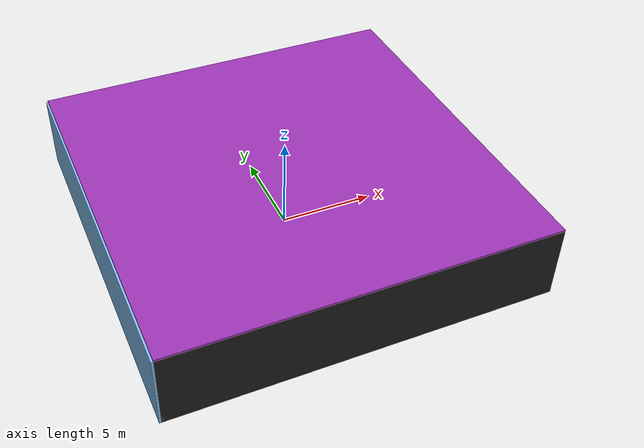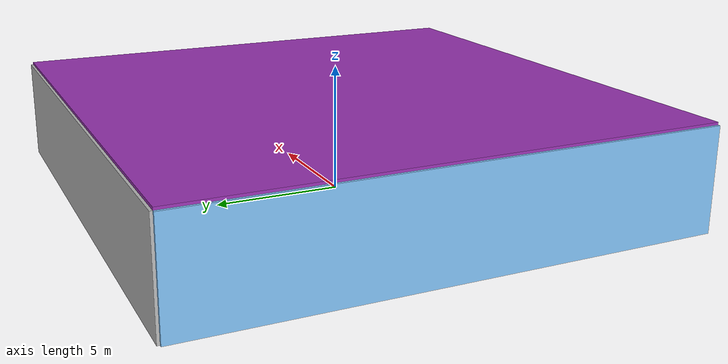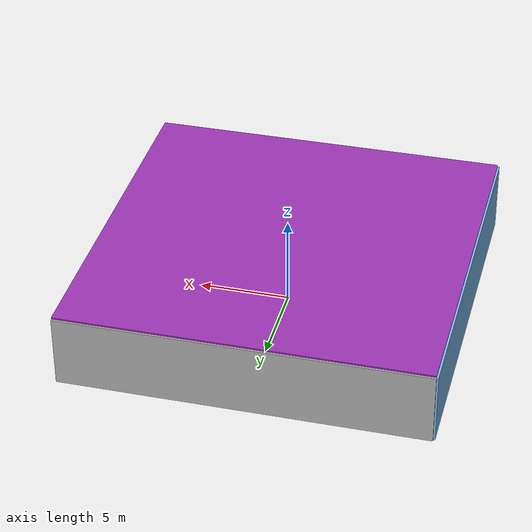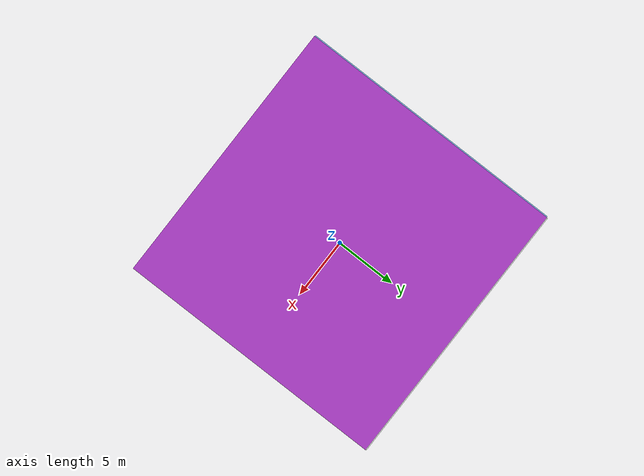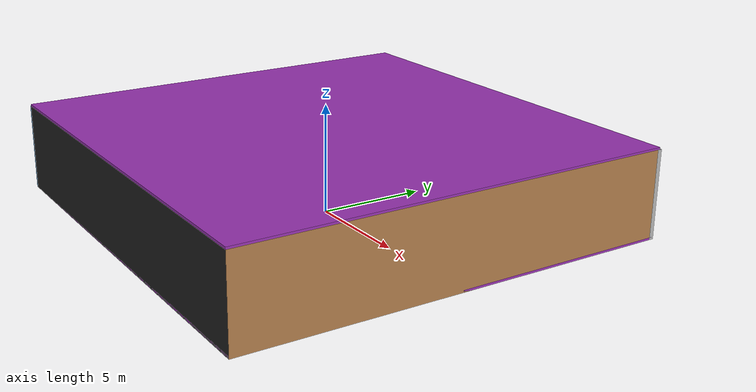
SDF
<sdf version="1.4">
 <world name="default">
  <physics type="ode">
   <max_step_size>0.001</max_step_size>
   <real_time_factor>1</real_time_factor>
   <real_time_update_rate>1000</real_time_update_rate>
   <gravity>0 0 -9.8</gravity>
  </physics>
  <scene><ambient>0.4 0.4 0.4 1</ambient><background>0.7 0.7 0.7 1</background><shadows>1</shadows></scene>
  <model name="Surrounding">
   <static>1</static>
   <link name="Ceiling">
    <collision name="Ceiling_Collision"><geometry><box><size>20 20 0.1</size></box></geometry></collision>
    <visual name="Ceiling_Visual">
     <geometry><box><size>20 20 0.1</size></box></geometry>
     <material>
      <script><uri>file://media/materials/scripts/gazebo.material</uri><name>Gazebo/PurpleGlow</name></script>
     </material>
    </visual>
    <pose>0 0 4.05 0 0 0</pose>
   </link>
   <link name="Wall_South">
    <collision name="Wall_South_Collision">
     <geometry><box><size>20 0 4</size></box></geometry>
     <pose>0 0 2 0 -0 0</pose>
    </collision>
    <visual name="Wall_South_Visual">
     <pose>0 0 2 0 -0 0</pose>
     <geometry><box><size>20 0 4</size></box></geometry>
     <material>
      <script><uri>file://media/materials/scripts/gazebo.material</uri><name>Gazebo/FlatBlack</name></script>
     </material>
    </visual>
    <velocity_decay><linear>0</linear><angular>0</angular></velocity_decay>
    <pose>0 -10 0 0 -0 0</pose>
   </link>
   <link name="Wall_East">
    <collision name="Wall_21_Collision">
     <geometry><box><size>20 0 4</size></box></geometry>
     <pose>0 0 2 0 -0 0</pose>
    </collision>
    <visual name="Wall_21_Visual">
     <pose>0 0 2 0 -0 0</pose>
     <geometry><box><size>20 0 4</size></box></geometry>
     <material>
      <script><uri>file://media/materials/scripts/gazebo.material</uri><name>Gazebo/Wood</name></script>
     </material>
    </visual>
    <velocity_decay><linear>0</linear><angular>0</angular></velocity_decay>
    <pose>10 0 0 0 -0 1.5708</pose>
   </link>
   <link name="Wall_North">
    <collision name="Wall_22_Collision">
     <geometry><box><size>20 0.2 4</size></box></geometry>
     <pose>0 0 2 0 -0 0</pose>
    </collision>
    <visual name="Wall_22_Visual">
     <pose>0 0 2 0 -0 0</pose>
     <geometry><box><size>20 0.2 4</size></box></geometry>
     <material>
      <script><uri>file://media/materials/scripts/gazebo.material</uri><name>Gazebo/Pioneer2Body</name></script>
     </material>
    </visual>
    <velocity_decay><linear>0</linear><angular>0</angular></velocity_decay>
    <pose>0 10 0 0 -0 0</pose>
   </link>
   <link name="Wall_West">
    <collision name="Wall_23_Collision">
     <geometry><box><size>20 0.2 4</size></box></geometry>
     <pose>0 0 2 0 -0 0</pose>
    </collision>
    <visual name="Wall_23_Visual">
     <pose>0 0 2 0 -0 0</pose>
     <geometry><box><size>20 0.2 4</size></box></geometry>
     <material>
      <script><uri>file://media/materials/scripts/gazebo.material</uri><name>Gazebo/SkyBlue</name></script>
     </material>
    </visual>
    <velocity_decay><linear>0</linear><angular>0</angular></velocity_decay>
    <pose>-10 0 0 0 0 -1.5708</pose>
   </link>
   <link name="Ground_link">
    <collision name="collision">
     <pose>0 0 .05 0 -0 0</pose>
     <geometry><box><size>20 20 0.1</size></box></geometry>
    </collision>
    <visual name="visual">
     <pose>0 0 .05 0 -0 0</pose>
     <geometry><box><size>20 20 0.1</size></box></geometry>
     <material>
      <script><uri>file://media/materials/scripts/gazebo.material</uri><name>Gazebo/Purple</name></script>
     </material>
    </visual>
   </link>
   <static>1</static>
  </model>
  <spherical_coordinates>
   <surface_model>EARTH_WGS84</surface_model>
   <latitude_deg>0</latitude_deg>
   <longitude_deg>0</longitude_deg>
   <elevation>0</elevation>
   <heading_deg>0</heading_deg>
  </spherical_coordinates>
  <light name="lightball_0" type="diffuse">
   <diffuse>0.8 0.8 0.8 1</diffuse>
   <specular>0.2 0.2 0.2 1</specular>
   <attenuation>
    <range>100</range>
    <constant>0.7</constant>
    <linear>0.01</linear>
    <quadratic>0.001</quadratic>
   </attenuation>
   <direction>-0.5 0.1 -0.9</direction>
   <pose>-9.52858492869 9.84128434272 2.12424850754 0 0 0</pose>
  </light>
  <light name="lightball_1" type="diffuse">
   <diffuse>0.8 0.8 0.8 1</diffuse>
   <specular>0.2 0.2 0.2 1</specular>
   <attenuation>
    <range>100</range>
    <constant>0.7</constant>
    <linear>0.01</linear>
    <quadratic>0.001</quadratic>
   </attenuation>
   <direction>-0.5 0.1 -0.9</direction>
   <pose>5.3913090746 9.66452954776 0.77462933646 0 0 0</pose>
  </light>
  <light name="lightball_2" type="diffuse">
   <diffuse>0.8 0.8 0.8 1</diffuse>
   <specular>0.2 0.2 0.2 1</specular>
   <attenuation>
    <range>100</range>
    <constant>0.7</constant>
    <linear>0.01</linear>
    <quadratic>0.001</quadratic>
   </attenuation>
   <direction>-0.5 0.1 -0.9</direction>
   <pose>-2.76964663579 4.72459318399 2.24410124373 0 0 0</pose>
  </light>
  <light name="lightball_3" type="diffuse">
   <diffuse>0.8 0.8 0.8 1</diffuse>
   <specular>0.2 0.2 0.2 1</specular>
   <attenuation>
    <range>100</range>
    <constant>0.7</constant>
    <linear>0.01</linear>
    <quadratic>0.001</quadratic>
   </attenuation>
   <direction>-0.5 0.1 -0.9</direction>
   <pose>-2.6129140934 -6.17036500151 1.23317278139 0 0 0</pose>
  </light>
  <light name="lightball_4" type="diffuse">
   <diffuse>0.8 0.8 0.8 1</diffuse>
   <specular>0.2 0.2 0.2 1</specular>
   <attenuation>
    <range>100</range>
    <constant>0.7</constant>
    <linear>0.01</linear>
    <quadratic>0.001</quadratic>
   </attenuation>
   <direction>-0.5 0.1 -0.9</direction>
   <pose>-7.36471764509 3.22784786839 2.15594835901 0 0 0</pose>
  </light>
  <light name="lightball_5" type="diffuse">
   <diffuse>0.8 0.8 0.8 1</diffuse>
   <specular>0.2 0.2 0.2 1</specular>
   <attenuation>
    <range>100</range>
    <constant>0.7</constant>
    <linear>0.01</linear>
    <quadratic>0.001</quadratic>
   </attenuation>
   <direction>-0.5 0.1 -0.9</direction>
   <pose>-2.5346442573 -3.08109974 1.68640252401 0 0 0</pose>
  </light>
  <light name="lightball_6" type="diffuse">
   <diffuse>0.8 0.8 0.8 1</diffuse>
   <specular>0.2 0.2 0.2 1</specular>
   <attenuation>
    <range>100</range>
    <constant>0.7</constant>
    <linear>0.01</linear>
    <quadratic>0.001</quadratic>
   </attenuation>
   <direction>-0.5 0.1 -0.9</direction>
   <pose>-5.17617104096 -9.54070864601 3.41618625535 0 0 0</pose>
  </light>
  <light name="lightball_7" type="diffuse">
   <diffuse>0.8 0.8 0.8 1</diffuse>
   <specular>0.2 0.2 0.2 1</specular>
   <attenuation>
    <range>100</range>
    <constant>0.7</constant>
    <linear>0.01</linear>
    <quadratic>0.001</quadratic>
   </attenuation>
   <direction>-0.5 0.1 -0.9</direction>
   <pose>-8.97182583455 6.50685698026 1.5632677542 0 0 0</pose>
  </light>
  <light name="lightball_8" type="diffuse">
   <diffuse>0.8 0.8 0.8 1</diffuse>
   <specular>0.2 0.2 0.2 1</specular>
   <attenuation>
    <range>100</range>
    <constant>0.7</constant>
    <linear>0.01</linear>
    <quadratic>0.001</quadratic>
   </attenuation>
   <direction>-0.5 0.1 -0.9</direction>
   <pose>6.74528203755 -1.10054417667 3.24743192255 0 0 0</pose>
  </light>
  <light name="lightball_9" type="diffuse">
   <diffuse>0.8 0.8 0.8 1</diffuse>
   <specular>0.2 0.2 0.2 1</specular>
   <attenuation>
    <range>100</range>
    <constant>0.7</constant>
    <linear>0.01</linear>
    <quadratic>0.001</quadratic>
   </attenuation>
   <direction>-0.5 0.1 -0.9</direction>
   <pose>3.23654048995 -0.489172442949 0.650944068003 0 0 0</pose>
  </light>
  <light name="lightball_10" type="diffuse">
   <diffuse>0.8 0.8 0.8 1</diffuse>
   <specular>0.2 0.2 0.2 1</specular>
   <attenuation>
    <range>100</range>
    <constant>0.7</constant>
    <linear>0.01</linear>
    <quadratic>0.001</quadratic>
   </attenuation>
   <direction>-0.5 0.1 -0.9</direction>
   <pose>-7.29476018657 -2.91930954625 2.37996506371 0 0 0</pose>
  </light>
  <light name="lightball_11" type="diffuse">
   <diffuse>0.8 0.8 0.8 1</diffuse>
   <specular>0.2 0.2 0.2 1</specular>
   <attenuation>
    <range>100</range>
    <constant>0.7</constant>
    <linear>0.01</linear>
    <quadratic>0.001</quadratic>
   </attenuation>
   <direction>-0.5 0.1 -0.9</direction>
   <pose>3.48034470585 -4.68516520156 1.11027667109 0 0 0</pose>
  </light>
  <light name="lightball_12" type="diffuse">
   <diffuse>0.8 0.8 0.8 1</diffuse>
   <specular>0.2 0.2 0.2 1</specular>
   <attenuation>
    <range>100</range>
    <constant>0.7</constant>
    <linear>0.01</linear>
    <quadratic>0.001</quadratic>
   </attenuation>
   <direction>-0.5 0.1 -0.9</direction>
   <pose>8.513204221 2.21035967701 1.70247394864 0 0 0</pose>
  </light>
  <light name="lightball_13" type="diffuse">
   <diffuse>0.8 0.8 0.8 1</diffuse>
   <specular>0.2 0.2 0.2 1</specular>
   <attenuation>
    <range>100</range>
    <constant>0.7</constant>
    <linear>0.01</linear>
    <quadratic>0.001</quadratic>
   </attenuation>
   <direction>-0.5 0.1 -0.9</direction>
   <pose>6.61726321432 -5.41019902052 3.33665121036 0 0 0</pose>
  </light>
  <include><uri>model://table</uri><pose>4.37239367894 2.37222789628 0 0 0 1.196596733</pose></include>
  <include>
   <uri>model://textured_shapes</uri>
   <pose>4.98091422087 6.63259202359 0 0 0 2.25778879854</pose>
  </include>
  <include>
   <uri>model://construction_cone</uri>
   <pose>7.55689283929 -0.59126847206 0 0 0 0.693230171817</pose>
  </include>
 </world>
</sdf>

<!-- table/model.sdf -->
<sdf version="1.5">
  <model name="table">
    <static>true</static>
    <link name="link">
      <collision name="surface">
        <pose>0 0 1.0 0 0 0</pose>
        <geometry>
          <box>
            <size>1.5 0.8 0.03</size>
          </box>
        </geometry>
        <surface>
          <friction>
            <ode>
              <mu>0.6</mu>
              <mu2>0.6</mu2>
            </ode>
          </friction>
        </surface>
      </collision>
      <visual name="visual1">
        <pose>0 0 1.0 0 0 0</pose>
        <geometry>
          <box>
            <size>1.5 0.8 0.03</size>
          </box>
        </geometry>
        <material>
          <script>
            <uri>model://media/materials/scripts/gazebo.material</uri>
            <name>Gazebo/Wood</name>
          </script>
        </material>
      </visual>
      <collision name="front_left_leg">
        <pose>0.68 0.38 0.5 0 0 0</pose>
        <geometry>
          <cylinder>
            <radius>0.02</radius>
            <length>1.0</length>
          </cylinder>
        </geometry>
      </collision>
      <visual name="front_left_leg">
        <pose>0.68 0.38 0.5 0 0 0</pose>
        <geometry>
          <cylinder>
            <radius>0.02</radius>
            <length>1.0</length>
          </cylinder>
        </geometry>
        <material>
          <script>
            <uri>model://media/materials/scripts/gazebo.material</uri>
            <name>Gazebo/Grey</name>
          </script>
        </material>
      </visual>
      <collision name="front_right_leg">
        <pose>0.68 -0.38 0.5 0 0 0</pose>
        <geometry>
          <cylinder>
            <radius>0.02</radius>
            <length>1.0</length>
          </cylinder>
        </geometry>
      </collision>
      <visual name="front_right_leg">
        <pose>0.68 -0.38 0.5 0 0 0</pose>
        <geometry>
          <cylinder>
            <radius>0.02</radius>
            <length>1.0</length>
          </cylinder>
        </geometry>
        <material>
          <script>
            <uri>model://media/materials/scripts/gazebo.material</uri>
            <name>Gazebo/Grey</name>
          </script>
        </material>
      </visual>
      <collision name="back_right_leg">
        <pose>-0.68 -0.38 0.5 0 0 0</pose>
        <geometry>
          <cylinder>
            <radius>0.02</radius>
            <length>1.0</length>
          </cylinder>
        </geometry>
      </collision>
      <visual name="back_right_leg">
        <pose>-0.68 -0.38 0.5 0 0 0</pose>
        <geometry>
          <cylinder>
            <radius>0.02</radius>
            <length>1.0</length>
          </cylinder>
        </geometry>
        <material>
          <script>
            <uri>model://media/materials/scripts/gazebo.material</uri>
            <name>Gazebo/Grey</name>
          </script>
        </material>
      </visual>
      <collision name="back_left_leg">
        <pose>-0.68 0.38 0.5 0 0 0</pose>
        <geometry>
          <cylinder>
            <radius>0.02</radius>
            <length>1.0</length>
          </cylinder>
        </geometry>
      </collision>
      <visual name="back_left_leg">
        <pose>-0.68 0.38 0.5 0 0 0</pose>
        <geometry>
          <cylinder>
            <radius>0.02</radius>
            <length>1.0</length>
          </cylinder>
        </geometry>
        <material>
          <script>
            <uri>model://media/materials/scripts/gazebo.material</uri>
            <name>Gazebo/Grey</name>
          </script>
        </material>
      </visual>
    </link>
  </model>
</sdf>

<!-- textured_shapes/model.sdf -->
<sdf version="1.6">
  <model name="textured_shapes">
    <pose>0 0 0.5 0 0 0</pose>
    <link name="box">
      <pose>0 -1.5 0 0 0 0</pose>
      <collision name="collision">
        <geometry>
          <box>
            <size>1 1 1</size>
          </box>
        </geometry>
      </collision>
      <visual name="visual">
        <geometry>
          <box>
            <size>1 1 1</size>
          </box>
        </geometry>
        <material>
          <script>
            <uri>model://../model_source/models/textured_shapes/materials/scripts</uri>
            <uri>model://../model_source/models/textured_shapes/materials/textures</uri>
            <name>TexturedShape/Squares</name>
          </script>
        </material>
      </visual>
    </link>
    <link name="sphere">
      <collision name="collision">
        <geometry>
          <sphere>
            <radius>0.5</radius>
          </sphere>
        </geometry>
      </collision>
      <visual name="visual">
        <geometry>
          <sphere>
            <radius>0.5</radius>
          </sphere>
        </geometry>
        <material>
          <script>
            <uri>model://../model_source/models/textured_shapes/materials/scripts</uri>
            <uri>model://../model_source/models/textured_shapes/materials/textures</uri>
            <name>TexturedShape/Squares</name>
          </script>
        </material>
      </visual>
    </link>
    <link name="cylinder">
      <pose>0 1.5 0 0 0 0</pose>
      <collision name="collision">
        <geometry>
          <cylinder>
            <radius>0.5</radius>
            <length>1</length>
          </cylinder>
        </geometry>
      </collision>
      <visual name="visual">
        <geometry>
          <cylinder>
            <radius>0.5</radius>
            <length>1</length>
          </cylinder>
        </geometry>
        <material>
          <script>
            <uri>model://../model_source/models/textured_shapes/materials/scripts</uri>
            <uri>model://../model_source/models/textured_shapes/materials/textures</uri>
            <name>TexturedShape/Squares</name>
          </script>
        </material>
      </visual>
    </link>
  </model>
</sdf>

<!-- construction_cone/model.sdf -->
<sdf version="1.5">
  <model name="Construction Cone">
    <link name="link">
      <collision name="collision">
        <geometry>
          <mesh>
            <scale>10 10 10</scale>
            <uri>file://isr-testbed/construction_cone/meshes/construction_cone.dae</uri>
          </mesh>
        </geometry>
      </collision>
      <visual name="visual">
        <geometry>
          <mesh>
            <scale>10 10 10</scale>
            <uri>file://isr-testbed/construction_cone/meshes/construction_cone.dae</uri>
          </mesh>
        </geometry>
      </visual>
    </link>
  </model>
</sdf>
